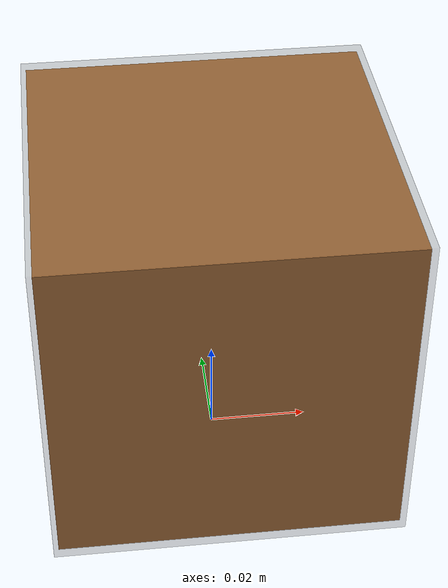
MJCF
<mujoco model="ycb_wood_block">
  <compiler autolimits="true"/>
  <default>
    <geom friction="1.0 0.01 0.001" condim="3" solref="0.008 1" solimp="0.90 0.95 0.001" margin="0.001"/>
  </default>
  <worldbody>
    <body name="ycb_wood_block" pos="0 0 0.035">
      <freejoint/>
      <inertial pos="0 0 0" mass="0.12" diaginertia="0.000098 0.000098 0.000098"/>
      <geom name="ycb_wood_block_collision" type="box" size="0.035 0.035 0.035" rgba="0.25 0.25 0.25 0.25"/>
      <geom name="ycb_wood_block_visual" type="box" size="0.034 0.034 0.034" contype="0" conaffinity="0" group="1" rgba="0.72 0.46 0.22 1"/>
    </body>
  </worldbody>
</mujoco>
